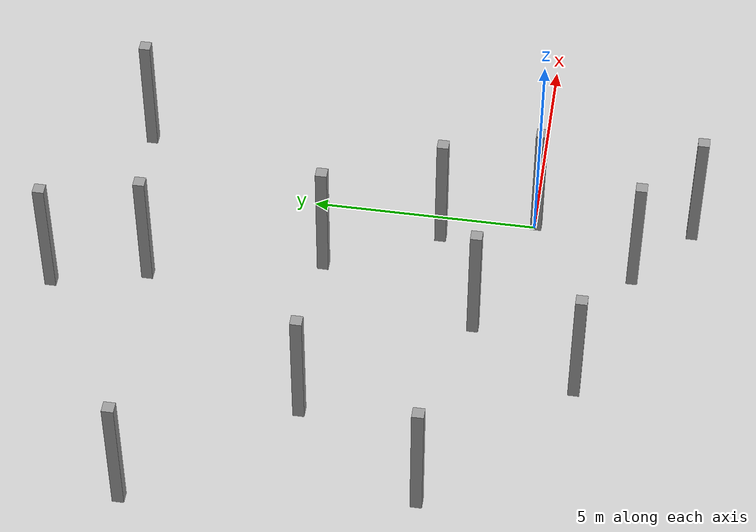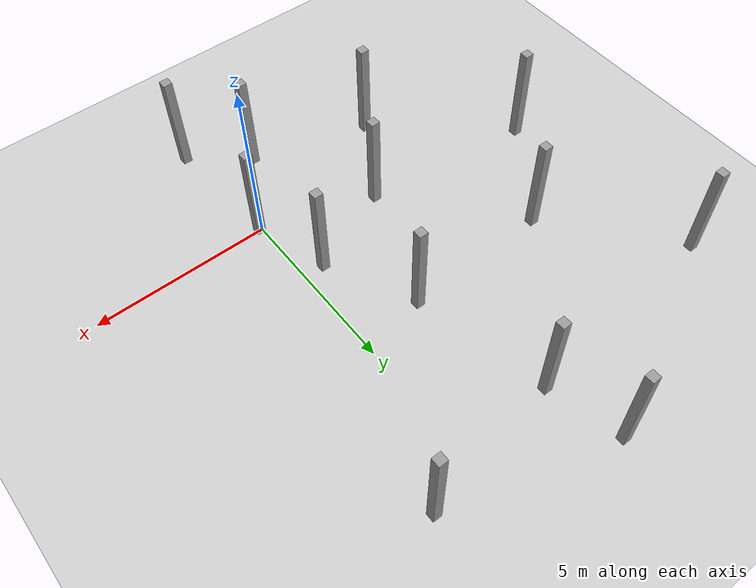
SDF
<sdf version="1.6">
 <world name="default">
  <model name="ground_plane">
   <static>1</static>
   <link name="link">
    <collision name="collision">
     <geometry><plane><normal>0 0 1</normal><size>100 100</size></plane></geometry>
     <surface><friction><ode><mu>100</mu><mu2>50</mu2></ode></friction></surface>
    </collision>
    <visual name="visual">
     <cast_shadows>0</cast_shadows>
     <geometry><plane><normal>0 0 1</normal><size>100 100</size></plane></geometry>
     <material>
      <script><uri>file://media/materials/scripts/gazebo.material</uri><name>Gazebo/Grey</name></script>
     </material>
    </visual>
   </link>
  </model>
  <model name="box_2">
   <link name="link">
    <pose>0 0 1 0 -0 0</pose>
    <inertial>
     <mass>1</mass>
     <inertia><ixx>5.16667</ixx><ixy>0</ixy><ixz>0</ixz><iyy>5.16667</iyy><iyz>0</iyz><izz>5.16667</izz></inertia>
     <pose>0 0 1 0 -0 0</pose>
    </inertial>
    <visual name="ModelPreview_4::link::visual_1">
     <geometry><box><size>0.25 0.25 3</size></box></geometry>
     <material>
      <script><name>Gazebo/Grey</name><uri>file://media/materials/scripts/gazebo.material</uri></script>
      <ambient>0.3 0.3 0.3 1</ambient>
      <diffuse>0.7 0.7 0.7 1</diffuse>
      <specular>0.01 0.01 0.01 1</specular>
      <emissive>0 0 0 1</emissive>
      <shader type="vertex"><normal_map>__default__</normal_map></shader>
     </material>
    </visual>
    <visual name="visual">
     <geometry><box><size>0.25 0.25 3</size></box></geometry>
     <material>
      <script><name>Gazebo/Grey</name><uri>file://media/materials/scripts/gazebo.material</uri></script>
      <ambient>0.3 0.3 0.3 1</ambient>
      <diffuse>0.7 0.7 0.7 1</diffuse>
      <specular>0.01 0.01 0.01 1</specular>
      <emissive>0 0 0 1</emissive>
      <shader type="vertex"><normal_map>__default__</normal_map></shader>
     </material>
    </visual>
    <collision name="collision">
     <geometry><box><size>0.25 0.25 3</size></box></geometry>
     <surface>
      <friction>
       <ode><mu>1</mu><mu2>1</mu2><fdir1>0 0 0</fdir1><slip1>0</slip1><slip2>0</slip2></ode>
       <torsional>
        <coefficient>1</coefficient>
        <patch_radius>0</patch_radius>
        <surface_radius>0</surface_radius>
        <use_patch_radius>1</use_patch_radius>
        <ode><slip>0</slip></ode>
       </torsional>
      </friction>
      <bounce><restitution_coefficient>0</restitution_coefficient><threshold>1e+06</threshold></bounce>
      <contact>
       <collide_without_contact>0</collide_without_contact>
       <collide_without_contact_bitmask>1</collide_without_contact_bitmask>
       <collide_bitmask>1</collide_bitmask>
       <ode>
        <soft_cfm>0</soft_cfm>
        <soft_erp>0.2</soft_erp>
        <kp>1e+13</kp>
        <kd>1</kd>
        <max_vel>0.01</max_vel>
        <min_depth>0</min_depth>
       </ode>
       <bullet>
        <split_impulse>1</split_impulse>
        <split_impulse_penetration_threshold>-0.01</split_impulse_penetration_threshold>
        <soft_cfm>0</soft_cfm>
        <soft_erp>0.2</soft_erp>
        <kp>1e+13</kp>
        <kd>1</kd>
       </bullet>
      </contact>
     </surface>
    </collision>
   </link>
   <static>0</static>
   <pose>0.066031 -0.031787 0.49912 0 0 -0.00016</pose>
  </model>
  <model name="box_2_7">
   <link name="link">
    <pose>0 0 1 0 -0 0</pose>
    <inertial>
     <mass>1</mass>
     <inertia><ixx>5.16667</ixx><ixy>0</ixy><ixz>0</ixz><iyy>5.16667</iyy><iyz>0</iyz><izz>5.16667</izz></inertia>
     <pose>0 0 1 0 -0 0</pose>
    </inertial>
    <visual name="ModelPreview_4::link::visual_1">
     <geometry><box><size>0.25 0.25 3</size></box></geometry>
     <material>
      <script><name>Gazebo/Grey</name><uri>file://media/materials/scripts/gazebo.material</uri></script>
      <ambient>0.3 0.3 0.3 1</ambient>
      <diffuse>0.7 0.7 0.7 1</diffuse>
      <specular>0.01 0.01 0.01 1</specular>
      <emissive>0 0 0 1</emissive>
      <shader type="vertex"><normal_map>__default__</normal_map></shader>
     </material>
    </visual>
    <visual name="visual">
     <geometry><box><size>0.25 0.25 3</size></box></geometry>
     <material>
      <script><name>Gazebo/Grey</name><uri>file://media/materials/scripts/gazebo.material</uri></script>
      <ambient>0.3 0.3 0.3 1</ambient>
      <diffuse>0.7 0.7 0.7 1</diffuse>
      <specular>0.01 0.01 0.01 1</specular>
      <emissive>0 0 0 1</emissive>
      <shader type="vertex"><normal_map>__default__</normal_map></shader>
     </material>
    </visual>
    <collision name="collision">
     <geometry><box><size>0.25 0.25 3</size></box></geometry>
     <surface>
      <friction>
       <ode><mu>1</mu><mu2>1</mu2><fdir1>0 0 0</fdir1><slip1>0</slip1><slip2>0</slip2></ode>
       <torsional>
        <coefficient>1</coefficient>
        <patch_radius>0</patch_radius>
        <surface_radius>0</surface_radius>
        <use_patch_radius>1</use_patch_radius>
        <ode><slip>0</slip></ode>
       </torsional>
      </friction>
      <bounce><restitution_coefficient>0</restitution_coefficient><threshold>1e+06</threshold></bounce>
      <contact>
       <collide_without_contact>0</collide_without_contact>
       <collide_without_contact_bitmask>1</collide_without_contact_bitmask>
       <collide_bitmask>1</collide_bitmask>
       <ode>
        <soft_cfm>0</soft_cfm>
        <soft_erp>0.2</soft_erp>
        <kp>1e+13</kp>
        <kd>1</kd>
        <max_vel>0.01</max_vel>
        <min_depth>0</min_depth>
       </ode>
       <bullet>
        <split_impulse>1</split_impulse>
        <split_impulse_penetration_threshold>-0.01</split_impulse_penetration_threshold>
        <soft_cfm>0</soft_cfm>
        <soft_erp>0.2</soft_erp>
        <kp>1e+13</kp>
        <kd>1</kd>
       </bullet>
      </contact>
     </surface>
    </collision>
   </link>
   <static>0</static>
   <pose>-1.22637 -2.30479 0.49912 0 0 -0.000178</pose>
  </model>
  <model name="box_2_12">
   <link name="link">
    <pose>0 0 1 0 -0 0</pose>
    <inertial>
     <mass>1</mass>
     <inertia><ixx>5.16667</ixx><ixy>0</ixy><ixz>0</ixz><iyy>5.16667</iyy><iyz>0</iyz><izz>5.16667</izz></inertia>
     <pose>0 0 1 0 -0 0</pose>
    </inertial>
    <visual name="ModelPreview_4::link::visual_1">
     <geometry><box><size>0.25 0.25 3</size></box></geometry>
     <material>
      <script><name>Gazebo/Grey</name><uri>file://media/materials/scripts/gazebo.material</uri></script>
      <ambient>0.3 0.3 0.3 1</ambient>
      <diffuse>0.7 0.7 0.7 1</diffuse>
      <specular>0.01 0.01 0.01 1</specular>
      <emissive>0 0 0 1</emissive>
      <shader type="vertex"><normal_map>__default__</normal_map></shader>
     </material>
    </visual>
    <visual name="visual">
     <geometry><box><size>0.25 0.25 3</size></box></geometry>
     <material>
      <script><name>Gazebo/Grey</name><uri>file://media/materials/scripts/gazebo.material</uri></script>
      <ambient>0.3 0.3 0.3 1</ambient>
      <diffuse>0.7 0.7 0.7 1</diffuse>
      <specular>0.01 0.01 0.01 1</specular>
      <emissive>0 0 0 1</emissive>
      <shader type="vertex"><normal_map>__default__</normal_map></shader>
     </material>
    </visual>
    <collision name="collision">
     <geometry><box><size>0.25 0.25 3</size></box></geometry>
     <surface>
      <friction>
       <ode><mu>1</mu><mu2>1</mu2><fdir1>0 0 0</fdir1><slip1>0</slip1><slip2>0</slip2></ode>
       <torsional>
        <coefficient>1</coefficient>
        <patch_radius>0</patch_radius>
        <surface_radius>0</surface_radius>
        <use_patch_radius>1</use_patch_radius>
        <ode><slip>0</slip></ode>
       </torsional>
      </friction>
      <bounce><restitution_coefficient>0</restitution_coefficient><threshold>1e+06</threshold></bounce>
      <contact>
       <collide_without_contact>0</collide_without_contact>
       <collide_without_contact_bitmask>1</collide_without_contact_bitmask>
       <collide_bitmask>1</collide_bitmask>
       <ode>
        <soft_cfm>0</soft_cfm>
        <soft_erp>0.2</soft_erp>
        <kp>1e+13</kp>
        <kd>1</kd>
        <max_vel>0.01</max_vel>
        <min_depth>0</min_depth>
       </ode>
       <bullet>
        <split_impulse>1</split_impulse>
        <split_impulse_penetration_threshold>-0.01</split_impulse_penetration_threshold>
        <soft_cfm>0</soft_cfm>
        <soft_erp>0.2</soft_erp>
        <kp>1e+13</kp>
        <kd>1</kd>
       </bullet>
      </contact>
     </surface>
    </collision>
   </link>
   <static>0</static>
   <pose>-4.56222 -1.34441 0.49912 0 0 -0.000141</pose>
  </model>
  <model name="box_2_19">
   <link name="link">
    <pose>0 0 1 0 -0 0</pose>
    <inertial>
     <mass>1</mass>
     <inertia><ixx>5.16667</ixx><ixy>0</ixy><ixz>0</ixz><iyy>5.16667</iyy><iyz>0</iyz><izz>5.16667</izz></inertia>
     <pose>0 0 1 0 -0 0</pose>
    </inertial>
    <visual name="ModelPreview_4::link::visual_1">
     <geometry><box><size>0.25 0.25 3</size></box></geometry>
     <material>
      <script><name>Gazebo/Grey</name><uri>file://media/materials/scripts/gazebo.material</uri></script>
      <ambient>0.3 0.3 0.3 1</ambient>
      <diffuse>0.7 0.7 0.7 1</diffuse>
      <specular>0.01 0.01 0.01 1</specular>
      <emissive>0 0 0 1</emissive>
      <shader type="vertex"><normal_map>__default__</normal_map></shader>
     </material>
    </visual>
    <visual name="visual">
     <geometry><box><size>0.25 0.25 3</size></box></geometry>
     <material>
      <script><name>Gazebo/Grey</name><uri>file://media/materials/scripts/gazebo.material</uri></script>
      <ambient>0.3 0.3 0.3 1</ambient>
      <diffuse>0.7 0.7 0.7 1</diffuse>
      <specular>0.01 0.01 0.01 1</specular>
      <emissive>0 0 0 1</emissive>
      <shader type="vertex"><normal_map>__default__</normal_map></shader>
     </material>
    </visual>
    <collision name="collision">
     <geometry><box><size>0.25 0.25 3</size></box></geometry>
     <surface>
      <friction>
       <ode><mu>1</mu><mu2>1</mu2><fdir1>0 0 0</fdir1><slip1>0</slip1><slip2>0</slip2></ode>
       <torsional>
        <coefficient>1</coefficient>
        <patch_radius>0</patch_radius>
        <surface_radius>0</surface_radius>
        <use_patch_radius>1</use_patch_radius>
        <ode><slip>0</slip></ode>
       </torsional>
      </friction>
      <bounce><restitution_coefficient>0</restitution_coefficient><threshold>1e+06</threshold></bounce>
      <contact>
       <collide_without_contact>0</collide_without_contact>
       <collide_without_contact_bitmask>1</collide_without_contact_bitmask>
       <collide_bitmask>1</collide_bitmask>
       <ode>
        <soft_cfm>0</soft_cfm>
        <soft_erp>0.2</soft_erp>
        <kp>1e+13</kp>
        <kd>1</kd>
        <max_vel>0.01</max_vel>
        <min_depth>0</min_depth>
       </ode>
       <bullet>
        <split_impulse>1</split_impulse>
        <split_impulse_penetration_threshold>-0.01</split_impulse_penetration_threshold>
        <soft_cfm>0</soft_cfm>
        <soft_erp>0.2</soft_erp>
        <kp>1e+13</kp>
        <kd>1</kd>
       </bullet>
      </contact>
     </surface>
    </collision>
   </link>
   <static>0</static>
   <pose>1.46233 9.06627 0.499023 -7e-06 -0 -0.000215</pose>
  </model>
  <model name="box_2_22">
   <link name="link">
    <pose>0 0 1 0 -0 0</pose>
    <inertial>
     <mass>1</mass>
     <inertia><ixx>5.16667</ixx><ixy>0</ixy><ixz>0</ixz><iyy>5.16667</iyy><iyz>0</iyz><izz>5.16667</izz></inertia>
     <pose>0 0 1 0 -0 0</pose>
    </inertial>
    <visual name="ModelPreview_4::link::visual_1">
     <geometry><box><size>0.25 0.25 3</size></box></geometry>
     <material>
      <script><name>Gazebo/Grey</name><uri>file://media/materials/scripts/gazebo.material</uri></script>
      <ambient>0.3 0.3 0.3 1</ambient>
      <diffuse>0.7 0.7 0.7 1</diffuse>
      <specular>0.01 0.01 0.01 1</specular>
      <emissive>0 0 0 1</emissive>
      <shader type="vertex"><normal_map>__default__</normal_map></shader>
     </material>
    </visual>
    <visual name="visual">
     <geometry><box><size>0.25 0.25 3</size></box></geometry>
     <material>
      <script><name>Gazebo/Grey</name><uri>file://media/materials/scripts/gazebo.material</uri></script>
      <ambient>0.3 0.3 0.3 1</ambient>
      <diffuse>0.7 0.7 0.7 1</diffuse>
      <specular>0.01 0.01 0.01 1</specular>
      <emissive>0 0 0 1</emissive>
      <shader type="vertex"><normal_map>__default__</normal_map></shader>
     </material>
    </visual>
    <collision name="collision">
     <geometry><box><size>0.25 0.25 3</size></box></geometry>
     <surface>
      <friction>
       <ode><mu>1</mu><mu2>1</mu2><fdir1>0 0 0</fdir1><slip1>0</slip1><slip2>0</slip2></ode>
       <torsional>
        <coefficient>1</coefficient>
        <patch_radius>0</patch_radius>
        <surface_radius>0</surface_radius>
        <use_patch_radius>1</use_patch_radius>
        <ode><slip>0</slip></ode>
       </torsional>
      </friction>
      <bounce><restitution_coefficient>0</restitution_coefficient><threshold>1e+06</threshold></bounce>
      <contact>
       <collide_without_contact>0</collide_without_contact>
       <collide_without_contact_bitmask>1</collide_without_contact_bitmask>
       <collide_bitmask>1</collide_bitmask>
       <ode>
        <soft_cfm>0</soft_cfm>
        <soft_erp>0.2</soft_erp>
        <kp>1e+13</kp>
        <kd>1</kd>
        <max_vel>0.01</max_vel>
        <min_depth>0</min_depth>
       </ode>
       <bullet>
        <split_impulse>1</split_impulse>
        <split_impulse_penetration_threshold>-0.01</split_impulse_penetration_threshold>
        <soft_cfm>0</soft_cfm>
        <soft_erp>0.2</soft_erp>
        <kp>1e+13</kp>
        <kd>1</kd>
       </bullet>
      </contact>
     </surface>
    </collision>
   </link>
   <static>0</static>
   <pose>0.305501 -3.52865 0.49912 0 0 -0.000131</pose>
  </model>
  <model name="box_2_23">
   <link name="link">
    <pose>0 0 1 0 -0 0</pose>
    <inertial>
     <mass>1</mass>
     <inertia><ixx>5.16667</ixx><ixy>0</ixy><ixz>0</ixz><iyy>5.16667</iyy><iyz>0</iyz><izz>5.16667</izz></inertia>
     <pose>0 0 1 0 -0 0</pose>
    </inertial>
    <visual name="ModelPreview_4::link::visual_1">
     <geometry><box><size>0.25 0.25 3</size></box></geometry>
     <material>
      <script><name>Gazebo/Grey</name><uri>file://media/materials/scripts/gazebo.material</uri></script>
      <ambient>0.3 0.3 0.3 1</ambient>
      <diffuse>0.7 0.7 0.7 1</diffuse>
      <specular>0.01 0.01 0.01 1</specular>
      <emissive>0 0 0 1</emissive>
      <shader type="vertex"><normal_map>__default__</normal_map></shader>
     </material>
    </visual>
    <visual name="visual">
     <geometry><box><size>0.25 0.25 3</size></box></geometry>
     <material>
      <script><name>Gazebo/Grey</name><uri>file://media/materials/scripts/gazebo.material</uri></script>
      <ambient>0.3 0.3 0.3 1</ambient>
      <diffuse>0.7 0.7 0.7 1</diffuse>
      <specular>0.01 0.01 0.01 1</specular>
      <emissive>0 0 0 1</emissive>
      <shader type="vertex"><normal_map>__default__</normal_map></shader>
     </material>
    </visual>
    <collision name="collision">
     <geometry><box><size>0.25 0.25 3</size></box></geometry>
     <surface>
      <friction>
       <ode><mu>1</mu><mu2>1</mu2><fdir1>0 0 0</fdir1><slip1>0</slip1><slip2>0</slip2></ode>
       <torsional>
        <coefficient>1</coefficient>
        <patch_radius>0</patch_radius>
        <surface_radius>0</surface_radius>
        <use_patch_radius>1</use_patch_radius>
        <ode><slip>0</slip></ode>
       </torsional>
      </friction>
      <bounce><restitution_coefficient>0</restitution_coefficient><threshold>1e+06</threshold></bounce>
      <contact>
       <collide_without_contact>0</collide_without_contact>
       <collide_without_contact_bitmask>1</collide_without_contact_bitmask>
       <collide_bitmask>1</collide_bitmask>
       <ode>
        <soft_cfm>0</soft_cfm>
        <soft_erp>0.2</soft_erp>
        <kp>1e+13</kp>
        <kd>1</kd>
        <max_vel>0.01</max_vel>
        <min_depth>0</min_depth>
       </ode>
       <bullet>
        <split_impulse>1</split_impulse>
        <split_impulse_penetration_threshold>-0.01</split_impulse_penetration_threshold>
        <soft_cfm>0</soft_cfm>
        <soft_erp>0.2</soft_erp>
        <kp>1e+13</kp>
        <kd>1</kd>
       </bullet>
      </contact>
     </surface>
    </collision>
   </link>
   <static>0</static>
   <pose>-1.80263 4.52393 0.49912 0 0 -0.000117</pose>
  </model>
  <model name="box_2_24">
   <link name="link">
    <pose>0 0 1 0 -0 0</pose>
    <inertial>
     <mass>1</mass>
     <inertia><ixx>5.16667</ixx><ixy>0</ixy><ixz>0</ixz><iyy>5.16667</iyy><iyz>0</iyz><izz>5.16667</izz></inertia>
     <pose>0 0 1 0 -0 0</pose>
    </inertial>
    <visual name="ModelPreview_4::link::visual_1">
     <geometry><box><size>0.25 0.25 3</size></box></geometry>
     <material>
      <script><name>Gazebo/Grey</name><uri>file://media/materials/scripts/gazebo.material</uri></script>
      <ambient>0.3 0.3 0.3 1</ambient>
      <diffuse>0.7 0.7 0.7 1</diffuse>
      <specular>0.01 0.01 0.01 1</specular>
      <emissive>0 0 0 1</emissive>
      <shader type="vertex"><normal_map>__default__</normal_map></shader>
     </material>
    </visual>
    <visual name="visual">
     <geometry><box><size>0.25 0.25 3</size></box></geometry>
     <material>
      <script><name>Gazebo/Grey</name><uri>file://media/materials/scripts/gazebo.material</uri></script>
      <ambient>0.3 0.3 0.3 1</ambient>
      <diffuse>0.7 0.7 0.7 1</diffuse>
      <specular>0.01 0.01 0.01 1</specular>
      <emissive>0 0 0 1</emissive>
      <shader type="vertex"><normal_map>__default__</normal_map></shader>
     </material>
    </visual>
    <collision name="collision">
     <geometry><box><size>0.25 0.25 3</size></box></geometry>
     <surface>
      <friction>
       <ode><mu>1</mu><mu2>1</mu2><fdir1>0 0 0</fdir1><slip1>0</slip1><slip2>0</slip2></ode>
       <torsional>
        <coefficient>1</coefficient>
        <patch_radius>0</patch_radius>
        <surface_radius>0</surface_radius>
        <use_patch_radius>1</use_patch_radius>
        <ode><slip>0</slip></ode>
       </torsional>
      </friction>
      <bounce><restitution_coefficient>0</restitution_coefficient><threshold>1e+06</threshold></bounce>
      <contact>
       <collide_without_contact>0</collide_without_contact>
       <collide_without_contact_bitmask>1</collide_without_contact_bitmask>
       <collide_bitmask>1</collide_bitmask>
       <ode>
        <soft_cfm>0</soft_cfm>
        <soft_erp>0.2</soft_erp>
        <kp>1e+13</kp>
        <kd>1</kd>
        <max_vel>0.01</max_vel>
        <min_depth>0</min_depth>
       </ode>
       <bullet>
        <split_impulse>1</split_impulse>
        <split_impulse_penetration_threshold>-0.01</split_impulse_penetration_threshold>
        <soft_cfm>0</soft_cfm>
        <soft_erp>0.2</soft_erp>
        <kp>1e+13</kp>
        <kd>1</kd>
       </bullet>
      </contact>
     </surface>
    </collision>
   </link>
   <static>0</static>
   <pose>-3.11206 1.01081 0.49912 0 0 -0.000161</pose>
  </model>
  <model name="box_2_27">
   <link name="link">
    <pose>0 0 1 0 -0 0</pose>
    <inertial>
     <mass>1</mass>
     <inertia><ixx>5.16667</ixx><ixy>0</ixy><ixz>0</ixz><iyy>5.16667</iyy><iyz>0</iyz><izz>5.16667</izz></inertia>
     <pose>0 0 1 0 -0 0</pose>
    </inertial>
    <visual name="ModelPreview_4::link::visual_1">
     <geometry><box><size>0.25 0.25 3</size></box></geometry>
     <material>
      <script><name>Gazebo/Grey</name><uri>file://media/materials/scripts/gazebo.material</uri></script>
      <ambient>0.3 0.3 0.3 1</ambient>
      <diffuse>0.7 0.7 0.7 1</diffuse>
      <specular>0.01 0.01 0.01 1</specular>
      <emissive>0 0 0 1</emissive>
      <shader type="vertex"><normal_map>__default__</normal_map></shader>
     </material>
    </visual>
    <visual name="visual">
     <geometry><box><size>0.25 0.25 3</size></box></geometry>
     <material>
      <script><name>Gazebo/Grey</name><uri>file://media/materials/scripts/gazebo.material</uri></script>
      <ambient>0.3 0.3 0.3 1</ambient>
      <diffuse>0.7 0.7 0.7 1</diffuse>
      <specular>0.01 0.01 0.01 1</specular>
      <emissive>0 0 0 1</emissive>
      <shader type="vertex"><normal_map>__default__</normal_map></shader>
     </material>
    </visual>
    <collision name="collision">
     <geometry><box><size>0.25 0.25 3</size></box></geometry>
     <surface>
      <friction>
       <ode><mu>1</mu><mu2>1</mu2><fdir1>0 0 0</fdir1><slip1>0</slip1><slip2>0</slip2></ode>
       <torsional>
        <coefficient>1</coefficient>
        <patch_radius>0</patch_radius>
        <surface_radius>0</surface_radius>
        <use_patch_radius>1</use_patch_radius>
        <ode><slip>0</slip></ode>
       </torsional>
      </friction>
      <bounce><restitution_coefficient>0</restitution_coefficient><threshold>1e+06</threshold></bounce>
      <contact>
       <collide_without_contact>0</collide_without_contact>
       <collide_without_contact_bitmask>1</collide_without_contact_bitmask>
       <collide_bitmask>1</collide_bitmask>
       <ode>
        <soft_cfm>0</soft_cfm>
        <soft_erp>0.2</soft_erp>
        <kp>1e+13</kp>
        <kd>1</kd>
        <max_vel>0.01</max_vel>
        <min_depth>0</min_depth>
       </ode>
       <bullet>
        <split_impulse>1</split_impulse>
        <split_impulse_penetration_threshold>-0.01</split_impulse_penetration_threshold>
        <soft_cfm>0</soft_cfm>
        <soft_erp>0.2</soft_erp>
        <kp>1e+13</kp>
        <kd>1</kd>
       </bullet>
      </contact>
     </surface>
    </collision>
   </link>
   <static>0</static>
   <pose>-5.97572 4.36033 0.49912 0 0 -0.000129</pose>
  </model>
  <model name="box_2_28">
   <link name="link">
    <pose>0 0 1 0 -0 0</pose>
    <inertial>
     <mass>1</mass>
     <inertia><ixx>5.16667</ixx><ixy>0</ixy><ixz>0</ixz><iyy>5.16667</iyy><iyz>0</iyz><izz>5.16667</izz></inertia>
     <pose>0 0 1 0 -0 0</pose>
    </inertial>
    <visual name="ModelPreview_4::link::visual_1">
     <geometry><box><size>0.25 0.25 3</size></box></geometry>
     <material>
      <script><name>Gazebo/Grey</name><uri>file://media/materials/scripts/gazebo.material</uri></script>
      <ambient>0.3 0.3 0.3 1</ambient>
      <diffuse>0.7 0.7 0.7 1</diffuse>
      <specular>0.01 0.01 0.01 1</specular>
      <emissive>0 0 0 1</emissive>
      <shader type="vertex"><normal_map>__default__</normal_map></shader>
     </material>
    </visual>
    <visual name="visual">
     <geometry><box><size>0.25 0.25 3</size></box></geometry>
     <material>
      <script><name>Gazebo/Grey</name><uri>file://media/materials/scripts/gazebo.material</uri></script>
      <ambient>0.3 0.3 0.3 1</ambient>
      <diffuse>0.7 0.7 0.7 1</diffuse>
      <specular>0.01 0.01 0.01 1</specular>
      <emissive>0 0 0 1</emissive>
      <shader type="vertex"><normal_map>__default__</normal_map></shader>
     </material>
    </visual>
    <collision name="collision">
     <geometry><box><size>0.25 0.25 3</size></box></geometry>
     <surface>
      <friction>
       <ode><mu>1</mu><mu2>1</mu2><fdir1>0 0 0</fdir1><slip1>0</slip1><slip2>0</slip2></ode>
       <torsional>
        <coefficient>1</coefficient>
        <patch_radius>0</patch_radius>
        <surface_radius>0</surface_radius>
        <use_patch_radius>1</use_patch_radius>
        <ode><slip>0</slip></ode>
       </torsional>
      </friction>
      <bounce><restitution_coefficient>0</restitution_coefficient><threshold>1e+06</threshold></bounce>
      <contact>
       <collide_without_contact>0</collide_without_contact>
       <collide_without_contact_bitmask>1</collide_without_contact_bitmask>
       <collide_bitmask>1</collide_bitmask>
       <ode>
        <soft_cfm>0</soft_cfm>
        <soft_erp>0.2</soft_erp>
        <kp>1e+13</kp>
        <kd>1</kd>
        <max_vel>0.01</max_vel>
        <min_depth>0</min_depth>
       </ode>
       <bullet>
        <split_impulse>1</split_impulse>
        <split_impulse_penetration_threshold>-0.01</split_impulse_penetration_threshold>
        <soft_cfm>0</soft_cfm>
        <soft_erp>0.2</soft_erp>
        <kp>1e+13</kp>
        <kd>1</kd>
       </bullet>
      </contact>
     </surface>
    </collision>
   </link>
   <static>0</static>
   <pose>-7.97317 1.56916 0.49912 0 0 -0.000148</pose>
  </model>
  <model name="box_2_29">
   <link name="link">
    <pose>0 0 1 0 -0 0</pose>
    <inertial>
     <mass>1</mass>
     <inertia><ixx>5.16667</ixx><ixy>0</ixy><ixz>0</ixz><iyy>5.16667</iyy><iyz>0</iyz><izz>5.16667</izz></inertia>
     <pose>0 0 1 0 -0 0</pose>
    </inertial>
    <visual name="ModelPreview_4::link::visual_1">
     <geometry><box><size>0.25 0.25 3</size></box></geometry>
     <material>
      <script><name>Gazebo/Grey</name><uri>file://media/materials/scripts/gazebo.material</uri></script>
      <ambient>0.3 0.3 0.3 1</ambient>
      <diffuse>0.7 0.7 0.7 1</diffuse>
      <specular>0.01 0.01 0.01 1</specular>
      <emissive>0 0 0 1</emissive>
      <shader type="vertex"><normal_map>__default__</normal_map></shader>
     </material>
    </visual>
    <visual name="visual">
     <geometry><box><size>0.25 0.25 3</size></box></geometry>
     <material>
      <script><name>Gazebo/Grey</name><uri>file://media/materials/scripts/gazebo.material</uri></script>
      <ambient>0.3 0.3 0.3 1</ambient>
      <diffuse>0.7 0.7 0.7 1</diffuse>
      <specular>0.01 0.01 0.01 1</specular>
      <emissive>0 0 0 1</emissive>
      <shader type="vertex"><normal_map>__default__</normal_map></shader>
     </material>
    </visual>
    <collision name="collision">
     <geometry><box><size>0.25 0.25 3</size></box></geometry>
     <surface>
      <friction>
       <ode><mu>1</mu><mu2>1</mu2><fdir1>0 0 0</fdir1><slip1>0</slip1><slip2>0</slip2></ode>
       <torsional>
        <coefficient>1</coefficient>
        <patch_radius>0</patch_radius>
        <surface_radius>0</surface_radius>
        <use_patch_radius>1</use_patch_radius>
        <ode><slip>0</slip></ode>
       </torsional>
      </friction>
      <bounce><restitution_coefficient>0</restitution_coefficient><threshold>1e+06</threshold></bounce>
      <contact>
       <collide_without_contact>0</collide_without_contact>
       <collide_without_contact_bitmask>1</collide_without_contact_bitmask>
       <collide_bitmask>1</collide_bitmask>
       <ode>
        <soft_cfm>0</soft_cfm>
        <soft_erp>0.2</soft_erp>
        <kp>1e+13</kp>
        <kd>1</kd>
        <max_vel>0.01</max_vel>
        <min_depth>0</min_depth>
       </ode>
       <bullet>
        <split_impulse>1</split_impulse>
        <split_impulse_penetration_threshold>-0.01</split_impulse_penetration_threshold>
        <soft_cfm>0</soft_cfm>
        <soft_erp>0.2</soft_erp>
        <kp>1e+13</kp>
        <kd>1</kd>
       </bullet>
      </contact>
     </surface>
    </collision>
   </link>
   <static>0</static>
   <pose>-2.64544 8.33203 0.499023 0 7e-06 -0.000136</pose>
  </model>
  <model name="box_2_31">
   <link name="link">
    <pose>0 0 1 0 -0 0</pose>
    <inertial>
     <mass>1</mass>
     <inertia><ixx>5.16667</ixx><ixy>0</ixy><ixz>0</ixz><iyy>5.16667</iyy><iyz>0</iyz><izz>5.16667</izz></inertia>
     <pose>0 0 1 0 -0 0</pose>
    </inertial>
    <visual name="ModelPreview_4::link::visual_1">
     <geometry><box><size>0.25 0.25 3</size></box></geometry>
     <material>
      <script><name>Gazebo/Grey</name><uri>file://media/materials/scripts/gazebo.material</uri></script>
      <ambient>0.3 0.3 0.3 1</ambient>
      <diffuse>0.7 0.7 0.7 1</diffuse>
      <specular>0.01 0.01 0.01 1</specular>
      <emissive>0 0 0 1</emissive>
      <shader type="vertex"><normal_map>__default__</normal_map></shader>
     </material>
    </visual>
    <visual name="visual">
     <geometry><box><size>0.25 0.25 3</size></box></geometry>
     <material>
      <script><name>Gazebo/Grey</name><uri>file://media/materials/scripts/gazebo.material</uri></script>
      <ambient>0.3 0.3 0.3 1</ambient>
      <diffuse>0.7 0.7 0.7 1</diffuse>
      <specular>0.01 0.01 0.01 1</specular>
      <emissive>0 0 0 1</emissive>
      <shader type="vertex"><normal_map>__default__</normal_map></shader>
     </material>
    </visual>
    <collision name="collision">
     <geometry><box><size>0.25 0.25 3</size></box></geometry>
     <surface>
      <friction>
       <ode><mu>1</mu><mu2>1</mu2><fdir1>0 0 0</fdir1><slip1>0</slip1><slip2>0</slip2></ode>
       <torsional>
        <coefficient>1</coefficient>
        <patch_radius>0</patch_radius>
        <surface_radius>0</surface_radius>
        <use_patch_radius>1</use_patch_radius>
        <ode><slip>0</slip></ode>
       </torsional>
      </friction>
      <bounce><restitution_coefficient>0</restitution_coefficient><threshold>1e+06</threshold></bounce>
      <contact>
       <collide_without_contact>0</collide_without_contact>
       <collide_without_contact_bitmask>1</collide_without_contact_bitmask>
       <collide_bitmask>1</collide_bitmask>
       <ode>
        <soft_cfm>0</soft_cfm>
        <soft_erp>0.2</soft_erp>
        <kp>1e+13</kp>
        <kd>1</kd>
        <max_vel>0.01</max_vel>
        <min_depth>0</min_depth>
       </ode>
       <bullet>
        <split_impulse>1</split_impulse>
        <split_impulse_penetration_threshold>-0.01</split_impulse_penetration_threshold>
        <soft_cfm>0</soft_cfm>
        <soft_erp>0.2</soft_erp>
        <kp>1e+13</kp>
        <kd>1</kd>
       </bullet>
      </contact>
     </surface>
    </collision>
   </link>
   <static>0</static>
   <pose>-0.587001 2.05341 0.49912 0 0 -0.00015</pose>
  </model>
  <model name="box_2_34">
   <link name="link">
    <pose>0 0 1 0 -0 0</pose>
    <inertial>
     <mass>1</mass>
     <inertia><ixx>5.16667</ixx><ixy>0</ixy><ixz>0</ixz><iyy>5.16667</iyy><iyz>0</iyz><izz>5.16667</izz></inertia>
     <pose>0 0 1 0 -0 0</pose>
    </inertial>
    <visual name="ModelPreview_4::link::visual_1">
     <geometry><box><size>0.25 0.25 3</size></box></geometry>
     <material>
      <script><name>Gazebo/Grey</name><uri>file://media/materials/scripts/gazebo.material</uri></script>
      <ambient>0.3 0.3 0.3 1</ambient>
      <diffuse>0.7 0.7 0.7 1</diffuse>
      <specular>0.01 0.01 0.01 1</specular>
      <emissive>0 0 0 1</emissive>
      <shader type="vertex"><normal_map>__default__</normal_map></shader>
     </material>
    </visual>
    <visual name="visual">
     <geometry><box><size>0.25 0.25 3</size></box></geometry>
     <material>
      <script><name>Gazebo/Grey</name><uri>file://media/materials/scripts/gazebo.material</uri></script>
      <ambient>0.3 0.3 0.3 1</ambient>
      <diffuse>0.7 0.7 0.7 1</diffuse>
      <specular>0.01 0.01 0.01 1</specular>
      <emissive>0 0 0 1</emissive>
      <shader type="vertex"><normal_map>__default__</normal_map></shader>
     </material>
    </visual>
    <collision name="collision">
     <geometry><box><size>0.25 0.25 3</size></box></geometry>
     <surface>
      <friction>
       <ode><mu>1</mu><mu2>1</mu2><fdir1>0 0 0</fdir1><slip1>0</slip1><slip2>0</slip2></ode>
       <torsional>
        <coefficient>1</coefficient>
        <patch_radius>0</patch_radius>
        <surface_radius>0</surface_radius>
        <use_patch_radius>1</use_patch_radius>
        <ode><slip>0</slip></ode>
       </torsional>
      </friction>
      <bounce><restitution_coefficient>0</restitution_coefficient><threshold>1e+06</threshold></bounce>
      <contact>
       <collide_without_contact>0</collide_without_contact>
       <collide_without_contact_bitmask>1</collide_without_contact_bitmask>
       <collide_bitmask>1</collide_bitmask>
       <ode>
        <soft_cfm>0</soft_cfm>
        <soft_erp>0.2</soft_erp>
        <kp>1e+13</kp>
        <kd>1</kd>
        <max_vel>0.01</max_vel>
        <min_depth>0</min_depth>
       </ode>
       <bullet>
        <split_impulse>1</split_impulse>
        <split_impulse_penetration_threshold>-0.01</split_impulse_penetration_threshold>
        <soft_cfm>0</soft_cfm>
        <soft_erp>0.2</soft_erp>
        <kp>1e+13</kp>
        <kd>1</kd>
       </bullet>
      </contact>
     </surface>
    </collision>
   </link>
   <static>0</static>
   <pose>-8.74542 7.66551 0.49912 0 0 -0.000128</pose>
  </model>
  <model name="box_2_39">
   <link name="link">
    <pose>0 0 1 0 -0 0</pose>
    <inertial>
     <mass>1</mass>
     <inertia><ixx>5.16667</ixx><ixy>0</ixy><ixz>0</ixz><iyy>5.16667</iyy><iyz>0</iyz><izz>5.16667</izz></inertia>
     <pose>0 0 1 0 -0 0</pose>
    </inertial>
    <visual name="ModelPreview_4::link::visual_1">
     <geometry><box><size>0.25 0.25 3</size></box></geometry>
     <material>
      <script><name>Gazebo/Grey</name><uri>file://media/materials/scripts/gazebo.material</uri></script>
      <ambient>0.3 0.3 0.3 1</ambient>
      <diffuse>0.7 0.7 0.7 1</diffuse>
      <specular>0.01 0.01 0.01 1</specular>
      <emissive>0 0 0 1</emissive>
      <shader type="vertex"><normal_map>__default__</normal_map></shader>
     </material>
    </visual>
    <visual name="visual">
     <geometry><box><size>0.25 0.25 3</size></box></geometry>
     <material>
      <script><name>Gazebo/Grey</name><uri>file://media/materials/scripts/gazebo.material</uri></script>
      <ambient>0.3 0.3 0.3 1</ambient>
      <diffuse>0.7 0.7 0.7 1</diffuse>
      <specular>0.01 0.01 0.01 1</specular>
      <emissive>0 0 0 1</emissive>
      <shader type="vertex"><normal_map>__default__</normal_map></shader>
     </material>
    </visual>
    <collision name="collision">
     <geometry><box><size>0.25 0.25 3</size></box></geometry>
     <surface>
      <friction>
       <ode><mu>1</mu><mu2>1</mu2><fdir1>0 0 0</fdir1><slip1>0</slip1><slip2>0</slip2></ode>
       <torsional>
        <coefficient>1</coefficient>
        <patch_radius>0</patch_radius>
        <surface_radius>0</surface_radius>
        <use_patch_radius>1</use_patch_radius>
        <ode><slip>0</slip></ode>
       </torsional>
      </friction>
      <bounce><restitution_coefficient>0</restitution_coefficient><threshold>1e+06</threshold></bounce>
      <contact>
       <collide_without_contact>0</collide_without_contact>
       <collide_without_contact_bitmask>1</collide_without_contact_bitmask>
       <collide_bitmask>1</collide_bitmask>
       <ode>
        <soft_cfm>0</soft_cfm>
        <soft_erp>0.2</soft_erp>
        <kp>1e+13</kp>
        <kd>1</kd>
        <max_vel>0.01</max_vel>
        <min_depth>0</min_depth>
       </ode>
       <bullet>
        <split_impulse>1</split_impulse>
        <split_impulse_penetration_threshold>-0.01</split_impulse_penetration_threshold>
        <soft_cfm>0</soft_cfm>
        <soft_erp>0.2</soft_erp>
        <kp>1e+13</kp>
        <kd>1</kd>
       </bullet>
      </contact>
     </surface>
    </collision>
   </link>
   <static>0</static>
   <pose>-3.16455 10.4069 0.49912 0 0 -2.8e-05</pose>
  </model>
 </world>
</sdf>
